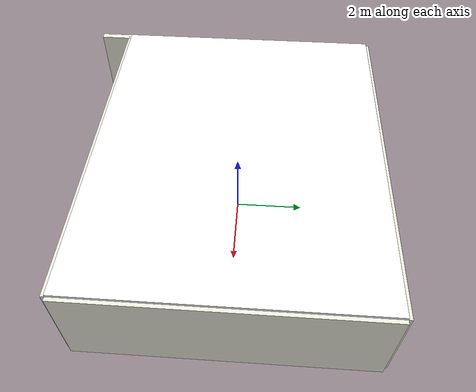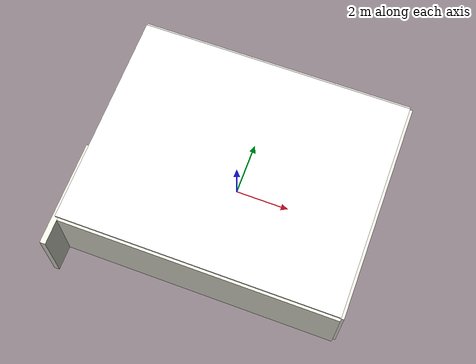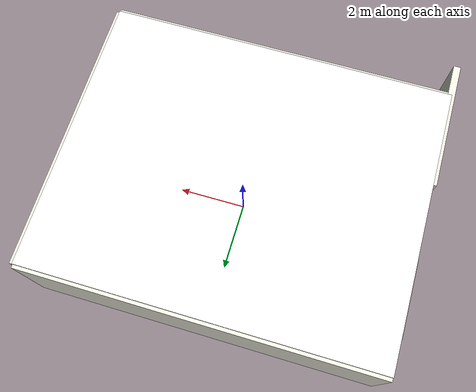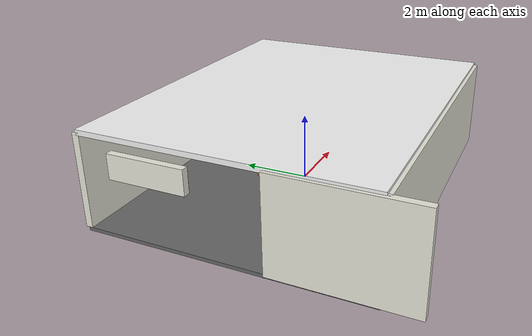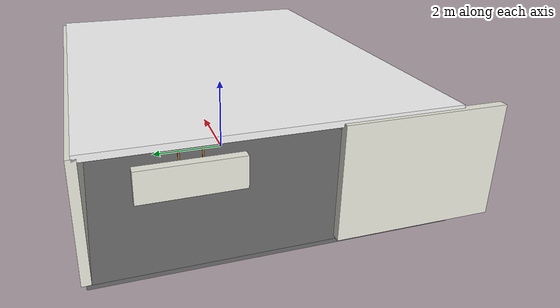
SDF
<?xml version="1.0" ?>
<sdf version="1.11">
  <world name="indoor_room">

    <!-- 地面（深灰色大地板） -->
    <model name="floor">
      <static>true</static>
      <link name="link">
        <visual name="visual">
          <geometry>
            <box>
              <size>10 8 0.1</size>
            </box>
          </geometry>
          <material>
            <diffuse>0.4 0.4 0.4 1</diffuse>
            <specular>0.1 0.1 0.1 1</specular>
          </material>
        </visual>
        <collision name="collision">
          <geometry>
            <box><size>10 8 0.1</size></box>
          </geometry>
        </collision>
      </link>
      <pose>0 0 -0.05 0 0 0</pose>   <!-- 稍微埋一点防止z-fighting -->
    </model>

    <!-- 四面墙（2.7m 高，带颜色） -->
    <!-- 前墙 -->
    <model name="wall_front">
      <static>true</static>
      <link name="link">
        <visual name="visual"><geometry><box><size>10 0.2 2.7</size></box></geometry>
          <material><diffuse>0.9 0.9 0.85 1</diffuse></material>
        </visual>
        <collision name="collision"><geometry><box><size>10 0.2 2.7</size></box></geometry></collision>
      </link>
      <pose>0 -4 1.35 0 0 0</pose>
    </model>

    <!-- 后墙 -->
    <model name="wall_back">
      <static>true</static>
      <link name="link">
        <visual name="visual"><geometry><box><size>10 0.2 2.7</size></box></geometry>
          <material><diffuse>0.9 0.9 0.85 1</diffuse></material>
        </visual>
        <collision name="collision"><geometry><box><size>10 0.2 2.7</size></box></geometry></collision>
      </link>
      <pose>0 4 1.35 0 0 0</pose>
    </model>

    <!-- 左墙（带门洞） -->
    <model name="wall_left">
      <static>true</static>
      <!-- 左半截墙 -->
      <link name="left_part">
        <pose>-3.1 0 1.35 0 0 0</pose>
        <visual name="v1"><geometry><box><size>3.8 0.2 2.7</size></box></geometry>
          <material><diffuse>0.9 0.9 0.85 1</diffuse></material>
        </visual>
        <collision name="c1"><geometry><box><size>3.8 0.2 2.7</size></box></geometry></collision>
      </link>
      <!-- 右半截墙（门上方） -->
      <link name="right_part">
        <pose>1.9 0 2.0 0 0 0</pose>
        <visual name="v2"><geometry><box><size>2.2 0.2 0.7</size></box></geometry>
          <material><diffuse>0.9 0.9 0.85 1</diffuse></material>
        </visual>
        <collision name="c2"><geometry><box><size>2.2 0.2 0.7</size></box></geometry></collision>
      </link>
      <pose>-5 0 0 0 0 1.5708</pose>   <!-- 整体绕Z旋转90° -->
    </model>

    <!-- 右墙 -->
    <model name="wall_right">
      <static>true</static>
      <link name="link">
        <visual name="visual"><geometry><box><size>8 0.2 2.7</size></box></geometry>
          <material><diffuse>0.9 0.9 0.85 1</diffuse></material>
        </visual>
        <collision name="collision"><geometry><box><size>8 0.2 2.7</size></box></geometry></collision>
      </link>
      <pose>5 0 1.35 0 0 1.5708</pose>
    </model>

    <!-- 天花板 -->
    <model name="ceiling">
      <static>true</static>
      <link name="link">
        <visual name="visual">
          <geometry><box><size>10 8 0.15</size></box></geometry>
          <material><diffuse>0.95 0.95 0.95 1</diffuse></material>
        </visual>
      </link>
      <pose>0 0 2.7 0 0 0</pose>
    </model>

    <!-- 灯光（模拟室内灯） -->
    <light name="sun" type="directional">
      <cast_shadows>true</cast_shadows>
      <pose>0 0 10 0 -0.5 1.5708</pose>
      <diffuse>0.9 0.9 0.9 1</diffuse>
      <specular>0.3 0.3 0.3 1</specular>
      <direction>-0.5 0.1 -0.9</direction>
      <attenuation>
        <range>100</range>
        <constant>0.5</constant>
        <linear>0.01</linear>
        <quadratic>0.001</quadratic>
      </attenuation>
    </light>

    <!-- 本地桌子：用 box 模拟（木色） -->
    <model name="simple_table">
      <static>true</static>
      <link name="tabletop">
        <pose>0 0 0.75 0 0 0</pose>  <!-- 桌面高度 0.75m -->
        <visual name="visual">
          <geometry>
            <box><size>1.2 0.8 0.05</size></box>  <!-- 桌面 1.2m x 0.8m x 0.05m -->
          </geometry>
          <material>
            <diffuse>0.6 0.4 0.2 1</diffuse>  <!-- 木色 -->
          </material>
        </visual>
        <collision name="collision">
          <geometry><box><size>1.2 0.8 0.05</size></box></geometry>
        </collision>
      </link>
      <link name="leg1">
        <pose>-0.5 0.35 0.25 0 0 0</pose>
        <visual name="visual"><geometry><box><size>0.05 0.05 0.5</size></box></geometry>
          <material><diffuse>0.6 0.4 0.2 1</diffuse></material>
        </visual>
        <collision name="collision"><geometry><box><size>0.05 0.05 0.5</size></box></geometry></collision>
      </link>
      <link name="leg2">
        <pose>0.5 0.35 0.25 0 0 0</pose>
        <visual name="visual"><geometry><box><size>0.05 0.05 0.5</size></box></geometry>
          <material><diffuse>0.6 0.4 0.2 1</diffuse></material>
        </visual>
        <collision name="collision"><geometry><box><size>0.05 0.05 0.5</size></box></geometry></collision>
      </link>
      <link name="leg3">
        <pose>-0.5 -0.35 0.25 0 0 0</pose>
        <visual name="visual"><geometry><box><size>0.05 0.05 0.5</size></box></geometry>
          <material><diffuse>0.6 0.4 0.2 1</diffuse></material>
        </visual>
        <collision name="collision"><geometry><box><size>0.05 0.05 0.5</size></box></geometry></collision>
      </link>
      <link name="leg4">
        <pose>0.5 -0.35 0.25 0 0 0</pose>
        <visual name="visual"><geometry><box><size>0.05 0.05 0.5</size></box></geometry>
          <material><diffuse>0.6 0.4 0.2 1</diffuse></material>
        </visual>
        <collision name="collision"><geometry><box><size>0.05 0.05 0.5</size></box></geometry></collision>
      </link>
      <pose>0 1 0 0 0 0</pose>  <!-- 桌子位置 -->
    </model>

    <!-- 本地椅子：用 cylinder + box 模拟（黑色） -->
    <model name="simple_chair">
      <link name="seat">
        <pose>0 0 0.45 0 0 0</pose>  <!-- 座位高度 0.45m -->
        <visual name="visual">
          <geometry>
            <box><size>0.4 0.4 0.05</size></box>
          </geometry>
          <material>
            <diffuse>0.1 0.1 0.1 1</diffuse>  <!-- 黑色 -->
          </material>
        </visual>
        <collision name="collision">
          <geometry><box><size>0.4 0.4 0.05</size></box></geometry>
        </collision>
      </link>
      <link name="backrest">
        <pose>0 0.25 0.85 0 0 0</pose>
        <visual name="visual">
          <geometry>
            <box><size>0.4 0.05 0.8</size></box>
          </geometry>
          <material><diffuse>0.1 0.1 0.1 1</diffuse></material>
        </visual>
        <collision name="collision">
          <geometry><box><size>0.4 0.05 0.8</size></box></geometry>
        </collision>
      </link>
      <link name="leg1">
        <pose>-0.15 0.15 0.175 0 0 0</pose>
        <visual name="visual"><geometry><cylinder><radius>0.025</radius><length>0.35</length></cylinder></geometry>
          <material><diffuse>0.1 0.1 0.1 1</diffuse></material>
        </visual>
        <collision name="collision"><geometry><cylinder><radius>0.025</radius><length>0.35</length></cylinder></geometry></collision>
      </link>
      <link name="leg2">
        <pose>0.15 0.15 0.175 0 0 0</pose>
        <visual name="visual"><geometry><cylinder><radius>0.025</radius><length>0.35</length></cylinder></geometry>
          <material><diffuse>0.1 0.1 0.1 1</diffuse></material>
        </visual>
        <collision name="collision"><geometry><cylinder><radius>0.025</radius><length>0.35</length></cylinder></geometry></collision>
      </link>
      <link name="leg3">
        <pose>-0.15 -0.15 0.175 0 0 0</pose>
        <visual name="visual"><geometry><cylinder><radius>0.025</radius><length>0.35</length></cylinder></geometry>
          <material><diffuse>0.1 0.1 0.1 1</diffuse></material>
        </visual>
        <collision name="collision"><geometry><cylinder><radius>0.025</radius><length>0.35</length></cylinder></geometry></collision>
      </link>
      <link name="leg4">
        <pose>0.15 -0.15 0.175 0 0 0</pose>
        <visual name="visual"><geometry><cylinder><radius>0.025</radius><length>0.35</length></cylinder></geometry>
          <material><diffuse>0.1 0.1 0.1 1</diffuse></material>
        </visual>
        <collision name="collision"><geometry><cylinder><radius>0.025</radius><length>0.35</length></cylinder></geometry></collision>
      </link>
      <pose>1.5 1 0 0 0 3.14</pose>  <!-- 椅子位置，面向桌子 -->
    </model>

  </world>
</sdf>
